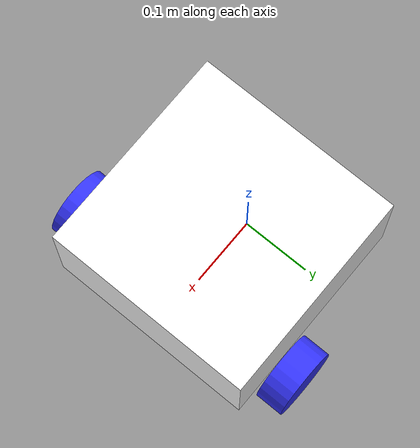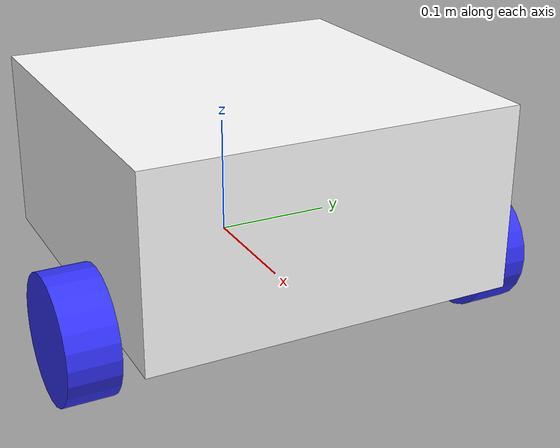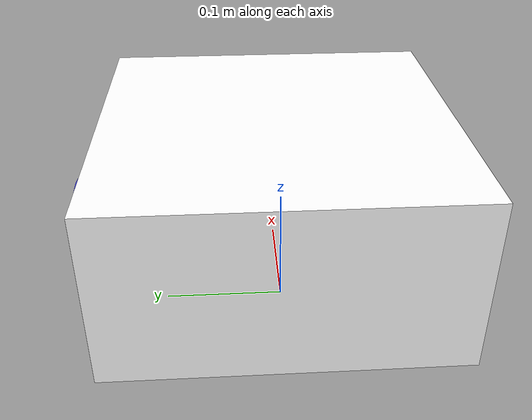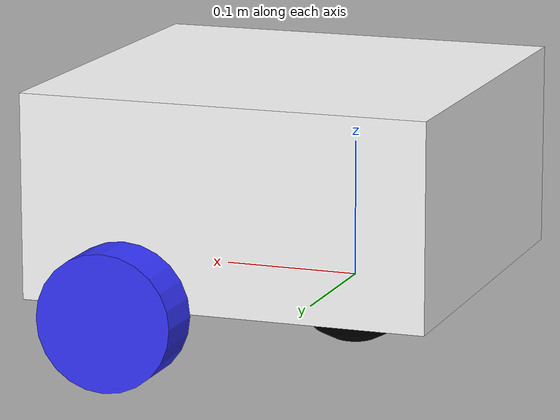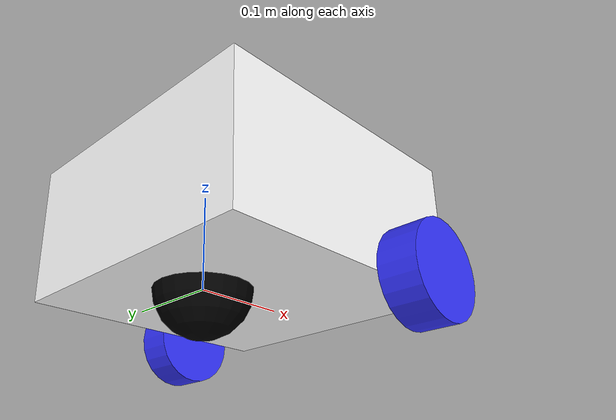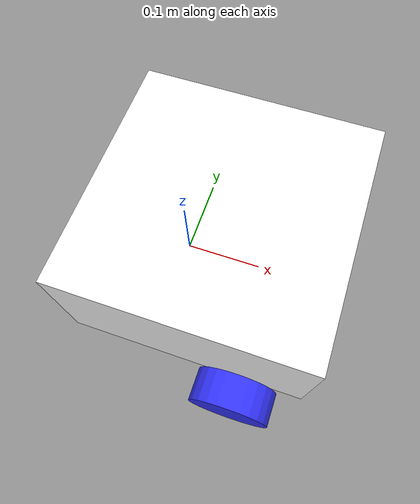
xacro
<?xml version="1.0"?>
<robot xmlns:xacro="http://www.ros.org/wiki/xacro"  name="robot">

    <!--Inserindo o arquivo de inercia-->
    <xacro:include filename="inertial_macros.xacro"/>

    <!--Colocando cores atraves das seguintes tags-->
    <material name="white">
        <color rgba="1 1 1 1"/>
    </material>

    <material name="orange">
        <color rgba="1 0.3 0.1 1"/>
    </material>

    <material name="blue">
        <color rgba="0.2 0.2 1 1"/>
    </material>

    <material name="black">
        <color rgba="0 0 0 1"/>
    </material>

    <!-- ===================== BASE LINK ===================== -->
    <!--Função padrão para executar um robot diferencial-->
    <link name="base_link">

    </link>

    <!-- ===================== CHASSIS LINK ===================== -->

    <!--Comandos para fazer a conexao e declarar o tipos-->
    <joint name="chassis_joint" type="fixed">
        <!--Criando hierarquia dos links futuros-->
        <parent link="base_link"/>
        <child link="chassis"/>
        <origin xyz="-0.1 0 0"/>
    </joint>

    <!--Criando links que sao responsaveis pela estrutura do robo-->
    <link name="chassis">
        <visual>
            <origin xyz="0.15 0 0.075"/>
            <geometry>
                <box size="0.3 0.3 0.15"/> <!--Tamanho e estrutura do robo (mm)-->
            </geometry>

            <material name="white"/>
        </visual>

        <!--Parte que possui o contato no simulador real -->
        <collision>
            <origin xyz="0.15 0 0.075" rpy="0 0 0"/>
            <geometry>
                <box size="0.3 0.3 0.15"/>
            </geometry>
        </collision>

        <xacro:inertial_box mass="0.5" x="0.3" y="0.3" z="0.15">
            <origin xyz="0.15 0 0.075" rpy="0 0 0"/>
        </xacro:inertial_box>

    </link>

    <!--Adicionando cores para o gazebo-->
    <gazebo reference="chassis">
        <material>Gazebo/Yellow</material>
    </gazebo>

    <!-- ===================== LEFT WHEEL LINK ===================== -->
    <joint name="left_wheel_joint" type="continuous">
        <parent link="base_link"/>
        <child link="left_wheel"/>
        <origin xyz="0.120 0.175 0" rpy="-${pi/2} 0 0"/>
        <axis xyz="0 0 1"/>
    </joint>

    <link name="left_wheel">
        <visual>
            <geometry>
                <cylinder length="0.04" radius="0.05" />
            </geometry>
            <material name="blue"/>
        </visual>

        <collision>
            <geometry>
                <cylinder length="0.04" radius="0.05" />
            </geometry>
            <material name="blue"/>
        </collision>

        <xacro:inertial_cylinder mass="0.1" length="0.05" radius="0.05">
            <origin xyz="0 0 0" rpy="0 0 0"/>
        </xacro:inertial_cylinder>

    </link>

    <gazebo reference="left_wheel">
        <material>Gazebo/Blue</material>
    </gazebo>

    <!-- ===================== RIGHT WHEEL LINK ===================== -->

    <joint name="right_wheel_joint" type="continuous">
        <parent link="base_link"/>
        <child link="right_wheel"/>
        <origin xyz="0.120 -0.175 0" rpy="${pi/2} 0 0"/>
        <axis xyz="0 0 -1"/>
    </joint>

    <link name="right_wheel">
        <visual>
            <geometry>
                <cylinder length="0.04" radius="0.05" />
            </geometry>
            <material name="blue"/>
        </visual>

        <collision>
            <geometry>
                <cylinder length="0.04" radius="0.05" />
            </geometry>
            <material name="blue"/>
        </collision>

        <xacro:inertial_sphere mass="0.1" radius="0.05">
            <origin xyz="0 0 0" rpy="0 0 0"/>
        </xacro:inertial_sphere>

    </link>

    <gazebo reference="right_wheel">
        <material>Gazebo/Blue</material>
    </gazebo>

    <!-- ===================== CASTER WHEEL LINK ===================== -->

    <joint name="caster_wheel_joint" type="fixed">
        <parent link="chassis"/>
        <child link="caster_wheel"/>
        <origin xyz="0.100 0 0" rpy="0 0 0"/>
    </joint>

    <link name="caster_wheel">
        <visual>
            <geometry>
                <sphere radius="0.05" /> <!--sphere = esfera-->
            </geometry>
            <material name="black"/>
        </visual>

        <collision>
            <geometry>
                <sphere radius="0.05" />
            </geometry>
            <material name="black"/>
        </collision>

        <xacro:inertial_sphere mass="0.3" radius="0.05">
            <origin xyz="0 0 0" rpy="0 0 0"/>
        </xacro:inertial_sphere>

    </link>

    <gazebo reference="caster_wheel">
        <material>Gazebo/Red</material>
        <!--(Reduzindo o atrito) para que a esfera possa girar -->
        <mu1 value="0.1"/>
        <mu2 value="0.1"/>
    </gazebo>

</robot>
